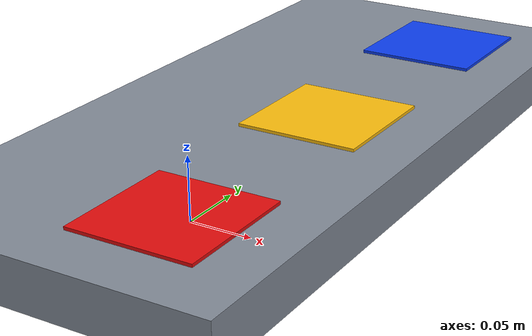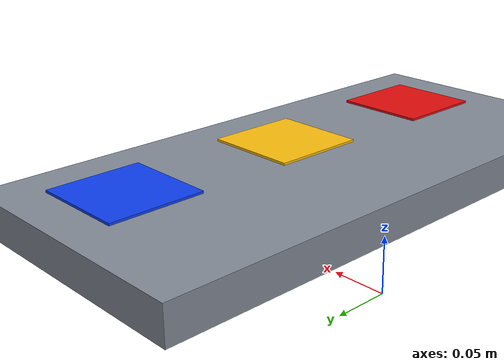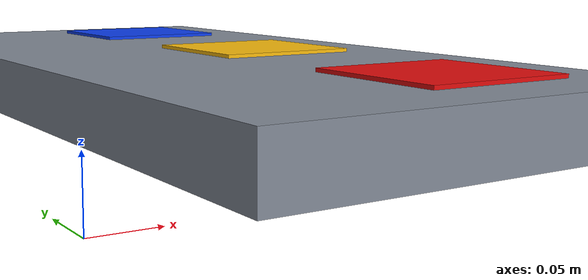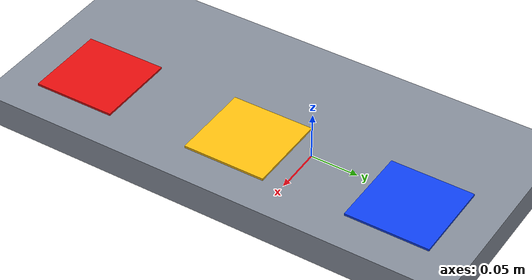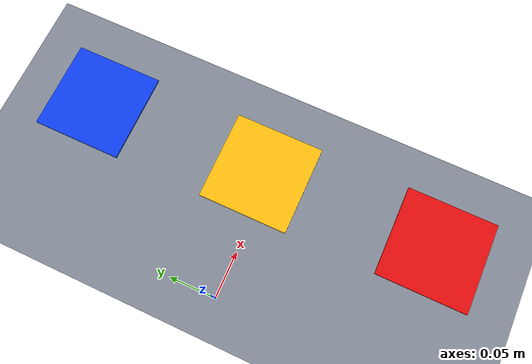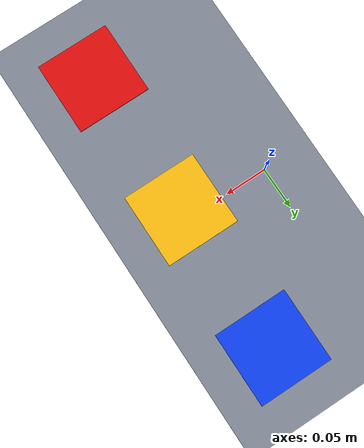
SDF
<?xml version="1.0"?>
<sdf version="1.9">
  <model name="rebotarm_workcell">
    <static>true</static>
    <link name="table">
      <collision name="table_collision">
        <pose>0 0 0.085 0 0 0</pose>
        <geometry><box><size>0.50 0.90 0.03</size></box></geometry>
      </collision>
      <visual name="table_visual">
        <pose>0 0 0.085 0 0 0</pose>
        <geometry><box><size>0.50 0.90 0.03</size></box></geometry>
        <material><ambient>0.42 0.45 0.50 1</ambient><diffuse>0.52 0.55 0.60 1</diffuse><specular>0.25 0.25 0.25 1</specular></material>
      </visual>
      <visual name="red_target">
        <pose>0.11 -0.16 0.101 0 0 0</pose>
        <geometry><box><size>0.08 0.08 0.002</size></box></geometry>
        <material><ambient>0.75 0.03 0.03 1</ambient><diffuse>0.9 0.05 0.05 1</diffuse></material>
      </visual>
      <visual name="yellow_target">
        <pose>0.11 0 0.101 0 0 0</pose>
        <geometry><box><size>0.08 0.08 0.002</size></box></geometry>
        <material><ambient>0.8 0.55 0.02 1</ambient><diffuse>1 0.75 0.05 1</diffuse></material>
      </visual>
      <visual name="blue_target">
        <pose>0.11 0.16 0.101 0 0 0</pose>
        <geometry><box><size>0.08 0.08 0.002</size></box></geometry>
        <material><ambient>0.03 0.12 0.75 1</ambient><diffuse>0.05 0.25 0.95 1</diffuse></material>
      </visual>
    </link>
  </model>
</sdf>
